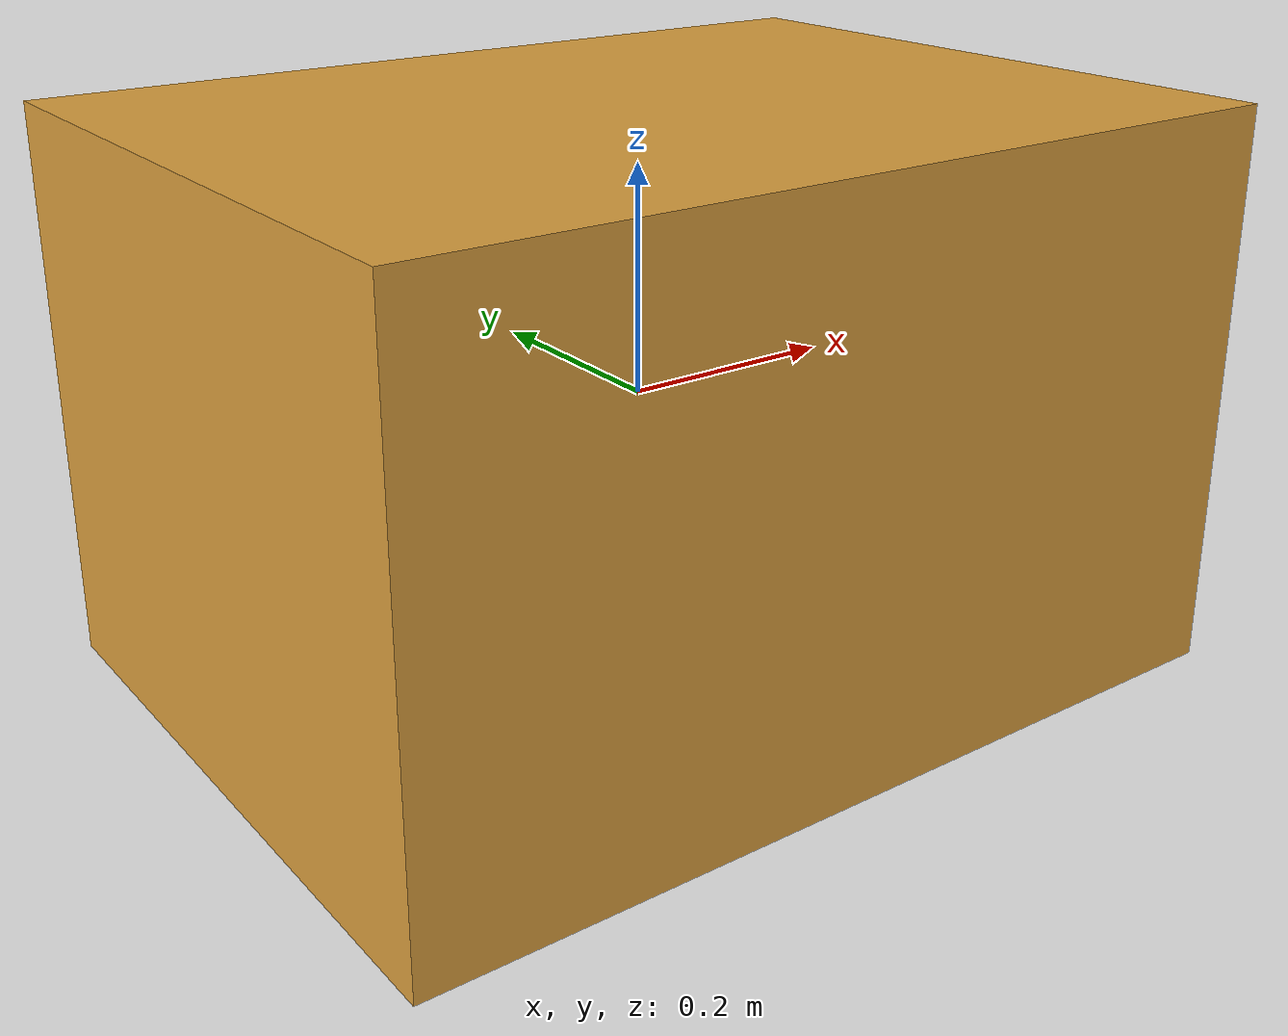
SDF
<?xml version="1.0"?>
<sdf version="1.6">
  <model name="pallet">
    <static>true</static>
    <link name="link">
      <collision name="collision">
        <geometry><box><size>0.8 0.6 0.5</size></box></geometry>
      </collision>
      <visual name="visual">
        <geometry><box><size>0.8 0.6 0.5</size></box></geometry>
        <material>
          <ambient>0.75 0.55 0.20 1</ambient>
          <diffuse>0.85 0.62 0.24 1</diffuse>
        </material>
      </visual>
    </link>
  </model>
</sdf>
